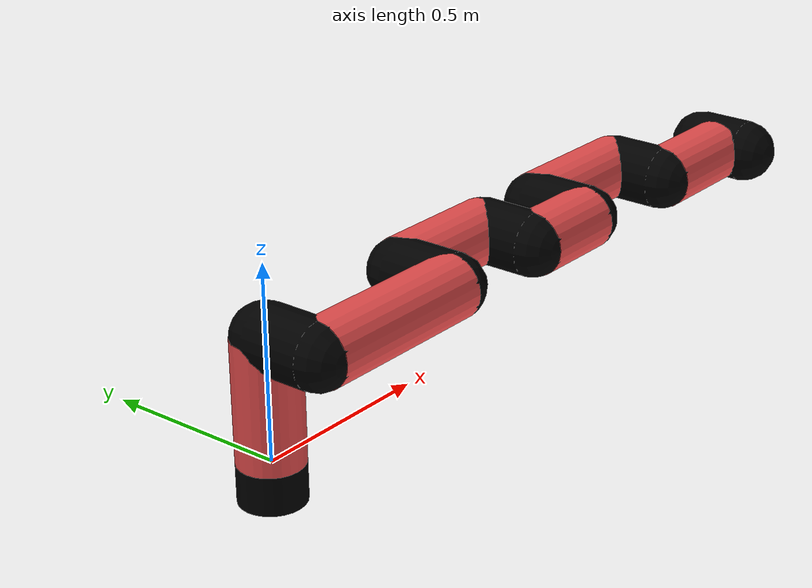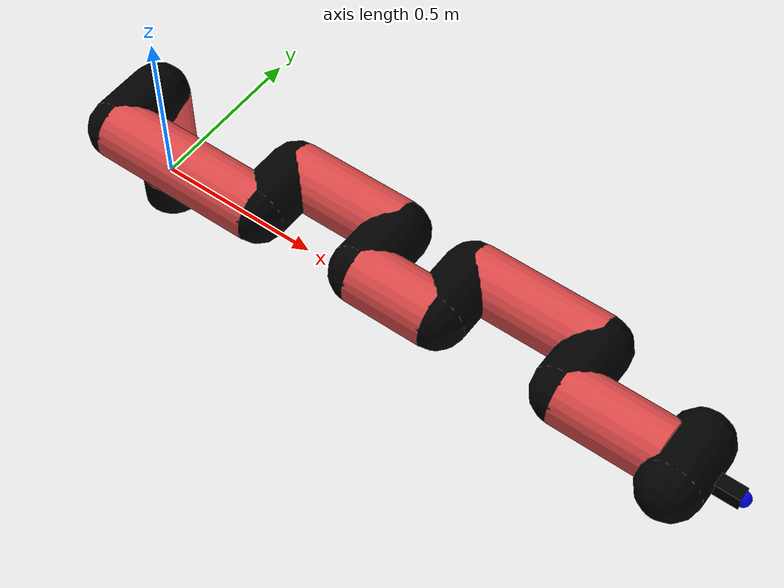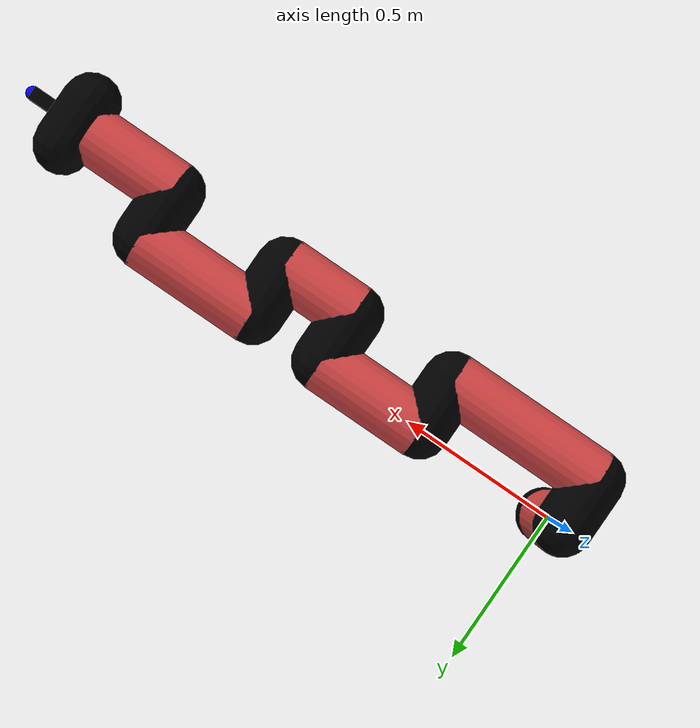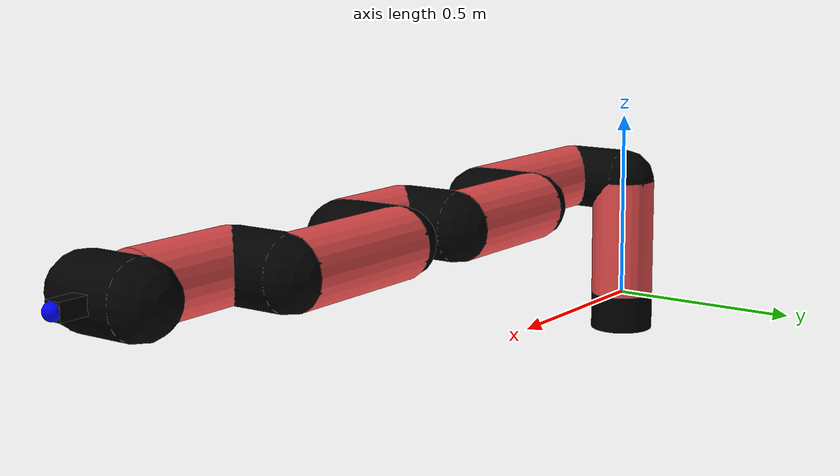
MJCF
<mujoco model="manipulator">
		<compiler angle="degree" coordinate="local" inertiafromgeom="auto" meshdir="meshes/"/>
		<option gravity="0 0 0" integrator="RK4" iterations="30" timestep="0.01"/>

		<default>
		<joint armature="1" limited="true" stiffness="10" damping="15" frictionloss="5.0"/>
		<geom conaffinity="1" condim="3" contype="1" friction=".5 .1 .1" margin="0.002"/>
		<motor ctrllimited="true"/>
		<position ctrllimited="true"/>
		</default>

		<asset>
		<texture builtin="gradient" height="100" rgb1="1.0 1.0 1.0" rgb2="1.0 1.0 1.0" type="skybox" width="100"/>
		<texture builtin="flat" height="32" name="arm_tex" rgb1="0.9 0.3 0.3" type="2d" width="32"/>
		<texture builtin="flat" height="32" name="gripper_tex" rgb1="0.0 0.0 0.0" type="cube" width="32"/>

		<material name="arm_mat" shininess="0.1" specular="0.1" texture="arm_tex"/>
		<material name="gripper_mat" shininess="1" specular="1" texture="gripper_tex"/>
		</asset>

		<worldbody>
		<light cutoff="45" diffuse=".8 .8 .8" dir="0 0.16 -1" directional="false" name="light" pos="0 -2.0 8.0" specular="0.3 0.3 0.3"/>

		<body name="base_link" pos="0 0 -0.1">
		<geom fromto="0 0 0 0 0 0.1" material="arm_mat" name="base_link" rgba="0.0 0.0 0.0 1" size="0.085" type="cylinder"/>
		</body>

		<body name="l1" pos="0 0 0">
<geom fromto="0 0 0 0 0 0.32" material="arm_mat" name="l1" rgba="0.9 0.3 0.3 1" size="0.085" type="cylinder"/>
<geom fromto="0 0 0.32 0 -0.16 0.32" material="arm_mat" name="l1_ex" rgba="0.0 0.0 0.0 1" size="0.085" type="capsule"/>
<joint axis="0 0 1" name="j1" pos="0 0 0" range="-90 90" damping="37.1" frictionloss="12.49"/>

<body name="l2" pos="0 -0.16 0.32">
<geom fromto="0 0 0 0.48 0 0" material="arm_mat" name="l2" rgba="0.9 0.3 0.3 1" size="0.085" type="cylinder"/>
<geom fromto="0.48 0 0 0.48 0.16 0" material="arm_mat" name="l2_ex" rgba="0.0 0.0 0.0 1" size="0.085" type="capsule"/>
<joint axis="0.0 1.0 0.0" name="j2" pos="0 0 0" range="-90 60" damping="32.09" frictionloss="11.21"/>

<body name="l3" pos="0.48 0.16 0">
<geom fromto="0 0 0 0.33 0 0" material="arm_mat" name="l3" rgba="0.9 0.3 0.3 1" size="0.085" type="cylinder"/>
<geom fromto="0.33 0 0 0.33 -0.16 0" material="arm_mat" name="l3_ex" rgba="0.0 0.0 0.0 1" size="0.085" type="capsule"/>
<joint axis="0.0 1.0 0.0" name="j3" pos="0 0 0" range="-30 60" damping="29.69" frictionloss="10.5"/>

<body name="l4" pos="0.33 -0.16 0">
<geom fromto="0 0 0 0.23 0 0" material="arm_mat" name="l4" rgba="0.9 0.3 0.3 1" size="0.085" type="cylinder"/>
<geom fromto="0.23 0 0 0.23 0.16 0" material="arm_mat" name="l4_ex" rgba="0.0 0.0 0.0 1" size="0.085" type="capsule"/>
<joint axis="0.0 1.0 0.0" name="j4" pos="0 0 0" range="-30 60" damping="30.57" frictionloss="9.01"/>

<body name="l5" pos="0.23 0.16 0">
<geom fromto="0 0 0 0.37 0 0" material="arm_mat" name="l5" rgba="0.9 0.3 0.3 1" size="0.085" type="cylinder"/>
<geom fromto="0.37 0 0 0.37 -0.16 0" material="arm_mat" name="l5_ex" rgba="0.0 0.0 0.0 1" size="0.085" type="capsule"/>
<joint axis="0.0 1.0 0.0" name="j5" pos="0 0 0" range="-30 60" damping="31.08" frictionloss="12.11"/>

<body name="l6" pos="0.37 -0.16 0">
<geom fromto="0 0 0 0.28 0 0" material="arm_mat" name="l6" rgba="0.9 0.3 0.3 1" size="0.085" type="cylinder"/>
<joint axis="0.0 1.0 0.0" name="j6" pos="0 0 0" range="-30 60" damping="27.5" frictionloss="9.33"/>

<body name="gripper" pos="0.28 0 0">
<geom fromto="0.05 -0.07 0 0.05 0.07 0" material="gripper_mat" name="gripper" rgba="0.0 0.0 0.0 1" size="0.085" type="capsule"/><joint axis="1 0 0" name="j7" pos="0 0 0" range="-90 90" damping="15" frictionloss="5.0"/><body name="finger" pos="0.1 0 0">
<geom fromto="0 0.0 0 0.1 0.0 0" material="gripper_mat" name="finger" rgba="0.0 0.0 0.0 1" size="0.020 0.06 0.06" type="box"/>
</body>
<site name="current" pos="0.2 0. 0.0" rgba="0. 0. 1.0 1" size="0.02" type="sphere"/>
</body>
</body>
</body>
</body>
</body>
</body>
</body>
</worldbody>
<actuator>
<motor ctrllimited="true" ctrlrange="-1.0 1.0" joint="j1" gear="83.57"/>
<motor ctrllimited="true" ctrlrange="-1.0 1.0" joint="j2" gear="61.24"/>
<motor ctrllimited="true" ctrlrange="-1.0 1.0" joint="j3" gear="65.3"/>
<motor ctrllimited="true" ctrlrange="-1.0 1.0" joint="j4" gear="92.28"/>
<motor ctrllimited="true" ctrlrange="-1.0 1.0" joint="j5" gear="70.29"/>
<motor ctrllimited="true" ctrlrange="-1.0 1.0" joint="j6" gear="61.36"/>
<motor ctrllimited="true" ctrlrange="-1.0 1.0" joint="j7" gear="80"/>
</actuator>
</mujoco>
